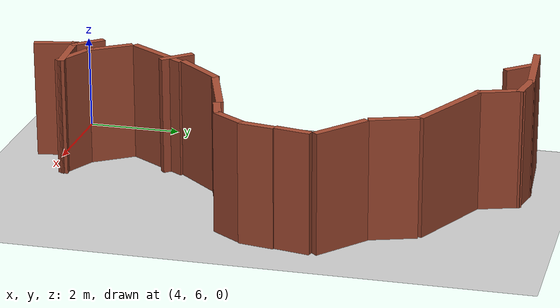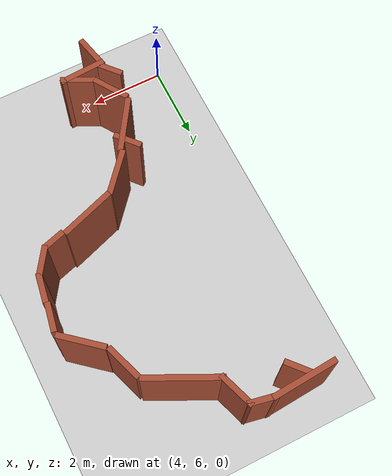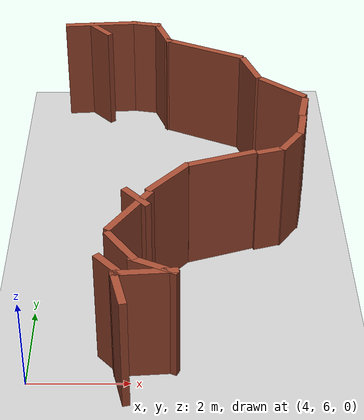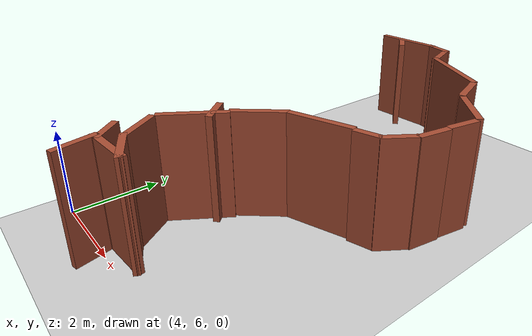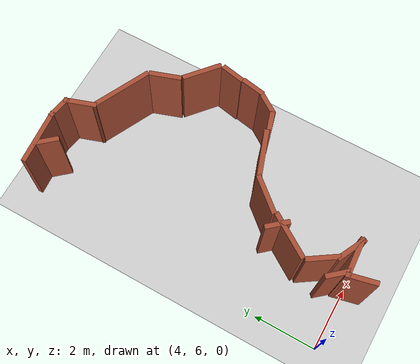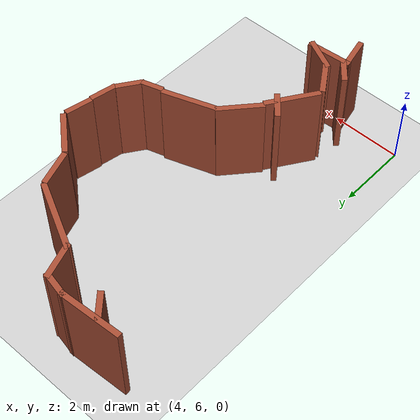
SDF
<sdf version="1.6">
 <world name="default">
  <model name="ground_plane">
   <static>1</static>
   <link name="link">
    <collision name="collision">
     <geometry><plane><normal>0 0 1</normal><size>100 100</size></plane></geometry>
     <surface><friction><ode><mu>100</mu><mu2>50</mu2></ode></friction></surface>
    </collision>
    <visual name="visual">
     <cast_shadows>0</cast_shadows>
     <geometry><plane><normal>0 0 1</normal><size>100 100</size></plane></geometry>
     <material>
      <script><uri>file://media/materials/scripts/gazebo.material</uri><name>Gazebo/Gray</name></script>
     </material>
    </visual>
   </link>
  </model>
  <model name="room5">
   <link name="Wall_0">
    <pose>-0.183506 -7.97438 0 0 0 -1.0472</pose>
    <visual name="Wall_0_Visual">
     <pose>0 0 1.25 0 -0 0</pose>
     <geometry><box><size>1 0.15 2.5</size></box></geometry>
     <material>
      <script><uri>file://media/materials/scripts/gazebo.material</uri><name>Gazebo/Bricks</name></script>
      <ambient>1 1 1 1</ambient>
      <shader type="pixel"/>
     </material>
     <meta><layer>0</layer></meta>
    </visual>
    <collision name="Wall_0_Collision">
     <pose>0 0 1.25 0 -0 0</pose>
     <geometry><box><size>1 0.15 2.5</size></box></geometry>
     <surface>
      <friction>
       <ode><mu>1</mu><mu2>1</mu2><fdir1>0 0 0</fdir1><slip1>0</slip1><slip2>0</slip2></ode>
       <torsional>
        <coefficient>1</coefficient>
        <patch_radius>0</patch_radius>
        <surface_radius>0</surface_radius>
        <use_patch_radius>1</use_patch_radius>
        <ode><slip>0</slip></ode>
       </torsional>
      </friction>
      <bounce><restitution_coefficient>0</restitution_coefficient><threshold>1e+06</threshold></bounce>
      <contact>
       <collide_without_contact>0</collide_without_contact>
       <collide_without_contact_bitmask>1</collide_without_contact_bitmask>
       <collide_bitmask>1</collide_bitmask>
       <ode>
        <soft_cfm>0</soft_cfm>
        <soft_erp>0.2</soft_erp>
        <kp>1e+13</kp>
        <kd>1</kd>
        <max_vel>0.01</max_vel>
        <min_depth>0</min_depth>
       </ode>
       <bullet>
        <split_impulse>1</split_impulse>
        <split_impulse_penetration_threshold>-0.01</split_impulse_penetration_threshold>
        <soft_cfm>0</soft_cfm>
        <soft_erp>0.2</soft_erp>
        <kp>1e+13</kp>
        <kd>1</kd>
       </bullet>
      </contact>
     </surface>
    </collision>
   </link>
   <link name="Wall_1">
    <pose>0.328993 -8.34245 0 0 -0 0</pose>
    <visual name="Wall_1_Visual">
     <pose>0 0 1.25 0 -0 0</pose>
     <geometry><box><size>0.75 0.15 2.5</size></box></geometry>
     <material>
      <script><uri>file://media/materials/scripts/gazebo.material</uri><name>Gazebo/Bricks</name></script>
      <ambient>1 1 1 1</ambient>
      <shader type="pixel"/>
     </material>
     <meta><layer>0</layer></meta>
    </visual>
    <collision name="Wall_1_Collision">
     <pose>0 0 1.25 0 -0 0</pose>
     <geometry><box><size>0.75 0.15 2.5</size></box></geometry>
     <surface>
      <friction>
       <ode><mu>1</mu><mu2>1</mu2><fdir1>0 0 0</fdir1><slip1>0</slip1><slip2>0</slip2></ode>
       <torsional>
        <coefficient>1</coefficient>
        <patch_radius>0</patch_radius>
        <surface_radius>0</surface_radius>
        <use_patch_radius>1</use_patch_radius>
        <ode><slip>0</slip></ode>
       </torsional>
      </friction>
      <bounce><restitution_coefficient>0</restitution_coefficient><threshold>1e+06</threshold></bounce>
      <contact>
       <collide_without_contact>0</collide_without_contact>
       <collide_without_contact_bitmask>1</collide_without_contact_bitmask>
       <collide_bitmask>1</collide_bitmask>
       <ode>
        <soft_cfm>0</soft_cfm>
        <soft_erp>0.2</soft_erp>
        <kp>1e+13</kp>
        <kd>1</kd>
        <max_vel>0.01</max_vel>
        <min_depth>0</min_depth>
       </ode>
       <bullet>
        <split_impulse>1</split_impulse>
        <split_impulse_penetration_threshold>-0.01</split_impulse_penetration_threshold>
        <soft_cfm>0</soft_cfm>
        <soft_erp>0.2</soft_erp>
        <kp>1e+13</kp>
        <kd>1</kd>
       </bullet>
      </contact>
     </surface>
    </collision>
   </link>
   <link name="Wall_11">
    <pose>-1.28949 -7.36692 0 0 -0 2.87979</pose>
    <visual name="Wall_11_Visual">
     <pose>0 0 1.25 0 -0 0</pose>
     <geometry><box><size>2 0.15 2.5</size></box></geometry>
     <material>
      <script><uri>file://media/materials/scripts/gazebo.material</uri><name>Gazebo/Bricks</name></script>
      <ambient>1 1 1 1</ambient>
      <shader type="pixel"/>
     </material>
     <meta><layer>0</layer></meta>
    </visual>
    <collision name="Wall_11_Collision">
     <pose>0 0 1.25 0 -0 0</pose>
     <geometry><box><size>2 0.15 2.5</size></box></geometry>
     <surface>
      <friction>
       <ode><mu>1</mu><mu2>1</mu2><fdir1>0 0 0</fdir1><slip1>0</slip1><slip2>0</slip2></ode>
       <torsional>
        <coefficient>1</coefficient>
        <patch_radius>0</patch_radius>
        <surface_radius>0</surface_radius>
        <use_patch_radius>1</use_patch_radius>
        <ode><slip>0</slip></ode>
       </torsional>
      </friction>
      <bounce><restitution_coefficient>0</restitution_coefficient><threshold>1e+06</threshold></bounce>
      <contact>
       <collide_without_contact>0</collide_without_contact>
       <collide_without_contact_bitmask>1</collide_without_contact_bitmask>
       <collide_bitmask>1</collide_bitmask>
       <ode>
        <soft_cfm>0</soft_cfm>
        <soft_erp>0.2</soft_erp>
        <kp>1e+13</kp>
        <kd>1</kd>
        <max_vel>0.01</max_vel>
        <min_depth>0</min_depth>
       </ode>
       <bullet>
        <split_impulse>1</split_impulse>
        <split_impulse_penetration_threshold>-0.01</split_impulse_penetration_threshold>
        <soft_cfm>0</soft_cfm>
        <soft_erp>0.2</soft_erp>
        <kp>1e+13</kp>
        <kd>1</kd>
       </bullet>
      </contact>
     </surface>
    </collision>
   </link>
   <link name="Wall_12">
    <pose>-2.44915 -2.83372 0 0 -0 0.523599</pose>
    <visual name="Wall_12_Visual">
     <pose>0 0 1.25 0 -0 0</pose>
     <geometry><box><size>1.5 0.15 2.5</size></box></geometry>
     <material>
      <script><uri>file://media/materials/scripts/gazebo.material</uri><name>Gazebo/Bricks</name></script>
      <ambient>1 1 1 1</ambient>
      <shader type="pixel"/>
     </material>
     <meta><layer>0</layer></meta>
    </visual>
    <collision name="Wall_12_Collision">
     <pose>0 0 1.25 0 -0 0</pose>
     <geometry><box><size>1.5 0.15 2.5</size></box></geometry>
     <surface>
      <friction>
       <ode><mu>1</mu><mu2>1</mu2><fdir1>0 0 0</fdir1><slip1>0</slip1><slip2>0</slip2></ode>
       <torsional>
        <coefficient>1</coefficient>
        <patch_radius>0</patch_radius>
        <surface_radius>0</surface_radius>
        <use_patch_radius>1</use_patch_radius>
        <ode><slip>0</slip></ode>
       </torsional>
      </friction>
      <bounce><restitution_coefficient>0</restitution_coefficient><threshold>1e+06</threshold></bounce>
      <contact>
       <collide_without_contact>0</collide_without_contact>
       <collide_without_contact_bitmask>1</collide_without_contact_bitmask>
       <collide_bitmask>1</collide_bitmask>
       <ode>
        <soft_cfm>0</soft_cfm>
        <soft_erp>0.2</soft_erp>
        <kp>1e+13</kp>
        <kd>1</kd>
        <max_vel>0.01</max_vel>
        <min_depth>0</min_depth>
       </ode>
       <bullet>
        <split_impulse>1</split_impulse>
        <split_impulse_penetration_threshold>-0.01</split_impulse_penetration_threshold>
        <soft_cfm>0</soft_cfm>
        <soft_erp>0.2</soft_erp>
        <kp>1e+13</kp>
        <kd>1</kd>
       </bullet>
      </contact>
     </surface>
    </collision>
   </link>
   <link name="Wall_13">
    <pose>-2.51054 -6.65573 0 0 -0 2.0944</pose>
    <visual name="Wall_13_Visual">
     <pose>0 0 1.25 0 -0 0</pose>
     <geometry><box><size>1 0.15 2.5</size></box></geometry>
     <material>
      <script><uri>file://media/materials/scripts/gazebo.material</uri><name>Gazebo/Bricks</name></script>
      <ambient>1 1 1 1</ambient>
      <shader type="pixel"/>
     </material>
     <meta><layer>0</layer></meta>
    </visual>
    <collision name="Wall_13_Collision">
     <pose>0 0 1.25 0 -0 0</pose>
     <geometry><box><size>1 0.15 2.5</size></box></geometry>
     <surface>
      <friction>
       <ode><mu>1</mu><mu2>1</mu2><fdir1>0 0 0</fdir1><slip1>0</slip1><slip2>0</slip2></ode>
       <torsional>
        <coefficient>1</coefficient>
        <patch_radius>0</patch_radius>
        <surface_radius>0</surface_radius>
        <use_patch_radius>1</use_patch_radius>
        <ode><slip>0</slip></ode>
       </torsional>
      </friction>
      <bounce><restitution_coefficient>0</restitution_coefficient><threshold>1e+06</threshold></bounce>
      <contact>
       <collide_without_contact>0</collide_without_contact>
       <collide_without_contact_bitmask>1</collide_without_contact_bitmask>
       <collide_bitmask>1</collide_bitmask>
       <ode>
        <soft_cfm>0</soft_cfm>
        <soft_erp>0.2</soft_erp>
        <kp>1e+13</kp>
        <kd>1</kd>
        <max_vel>0.01</max_vel>
        <min_depth>0</min_depth>
       </ode>
       <bullet>
        <split_impulse>1</split_impulse>
        <split_impulse_penetration_threshold>-0.01</split_impulse_penetration_threshold>
        <soft_cfm>0</soft_cfm>
        <soft_erp>0.2</soft_erp>
        <kp>1e+13</kp>
        <kd>1</kd>
       </bullet>
      </contact>
     </surface>
    </collision>
   </link>
   <link name="Wall_16">
    <pose>-3.8903 -5.15429 0 0 -0 1.5708</pose>
    <visual name="Wall_16_Visual">
     <pose>0 0 1.25 0 -0 0</pose>
     <geometry><box><size>0.75 0.15 2.5</size></box></geometry>
     <material>
      <script><uri>file://media/materials/scripts/gazebo.material</uri><name>Gazebo/Bricks</name></script>
      <ambient>1 1 1 1</ambient>
      <shader type="pixel"/>
     </material>
     <meta><layer>0</layer></meta>
    </visual>
    <collision name="Wall_16_Collision">
     <pose>0 0 1.25 0 -0 0</pose>
     <geometry><box><size>0.75 0.15 2.5</size></box></geometry>
     <surface>
      <friction>
       <ode><mu>1</mu><mu2>1</mu2><fdir1>0 0 0</fdir1><slip1>0</slip1><slip2>0</slip2></ode>
       <torsional>
        <coefficient>1</coefficient>
        <patch_radius>0</patch_radius>
        <surface_radius>0</surface_radius>
        <use_patch_radius>1</use_patch_radius>
        <ode><slip>0</slip></ode>
       </torsional>
      </friction>
      <bounce><restitution_coefficient>0</restitution_coefficient><threshold>1e+06</threshold></bounce>
      <contact>
       <collide_without_contact>0</collide_without_contact>
       <collide_without_contact_bitmask>1</collide_without_contact_bitmask>
       <collide_bitmask>1</collide_bitmask>
       <ode>
        <soft_cfm>0</soft_cfm>
        <soft_erp>0.2</soft_erp>
        <kp>1e+13</kp>
        <kd>1</kd>
        <max_vel>0.01</max_vel>
        <min_depth>0</min_depth>
       </ode>
       <bullet>
        <split_impulse>1</split_impulse>
        <split_impulse_penetration_threshold>-0.01</split_impulse_penetration_threshold>
        <soft_cfm>0</soft_cfm>
        <soft_erp>0.2</soft_erp>
        <kp>1e+13</kp>
        <kd>1</kd>
       </bullet>
      </contact>
     </surface>
    </collision>
   </link>
   <link name="Wall_17">
    <pose>-3.33996 -5.9042 0 0 -0 2.63004</pose>
    <visual name="Wall_17_Visual">
     <pose>0 0 1.25 0 -0 0</pose>
     <geometry><box><size>1.25 0.15 2.5</size></box></geometry>
     <material>
      <script><uri>file://media/materials/scripts/gazebo.material</uri><name>Gazebo/Bricks</name></script>
      <ambient>1 1 1 1</ambient>
      <shader type="pixel"/>
     </material>
     <meta><layer>0</layer></meta>
    </visual>
    <collision name="Wall_17_Collision">
     <pose>0 0 1.25 0 -0 0</pose>
     <geometry><box><size>1.25 0.15 2.5</size></box></geometry>
     <surface>
      <friction>
       <ode><mu>1</mu><mu2>1</mu2><fdir1>0 0 0</fdir1><slip1>0</slip1><slip2>0</slip2></ode>
       <torsional>
        <coefficient>1</coefficient>
        <patch_radius>0</patch_radius>
        <surface_radius>0</surface_radius>
        <use_patch_radius>1</use_patch_radius>
        <ode><slip>0</slip></ode>
       </torsional>
      </friction>
      <bounce><restitution_coefficient>0</restitution_coefficient><threshold>1e+06</threshold></bounce>
      <contact>
       <collide_without_contact>0</collide_without_contact>
       <collide_without_contact_bitmask>1</collide_without_contact_bitmask>
       <collide_bitmask>1</collide_bitmask>
       <ode>
        <soft_cfm>0</soft_cfm>
        <soft_erp>0.2</soft_erp>
        <kp>1e+13</kp>
        <kd>1</kd>
        <max_vel>0.01</max_vel>
        <min_depth>0</min_depth>
       </ode>
       <bullet>
        <split_impulse>1</split_impulse>
        <split_impulse_penetration_threshold>-0.01</split_impulse_penetration_threshold>
        <soft_cfm>0</soft_cfm>
        <soft_erp>0.2</soft_erp>
        <kp>1e+13</kp>
        <kd>1</kd>
       </bullet>
      </contact>
     </surface>
    </collision>
   </link>
   <link name="Wall_18">
    <pose>-3.92963 -4.40416 0 0 -0 1.58659</pose>
    <visual name="Wall_18_Visual">
     <pose>0 0 1.25 0 -0 0</pose>
     <geometry><box><size>0.75 0.15 2.5</size></box></geometry>
     <material>
      <script><uri>file://media/materials/scripts/gazebo.material</uri><name>Gazebo/Bricks</name></script>
      <ambient>1 1 1 1</ambient>
      <shader type="pixel"/>
     </material>
     <meta><layer>0</layer></meta>
    </visual>
    <collision name="Wall_18_Collision">
     <pose>0 0 1.25 0 -0 0</pose>
     <geometry><box><size>0.75 0.15 2.5</size></box></geometry>
     <surface>
      <friction>
       <ode><mu>1</mu><mu2>1</mu2><fdir1>0 0 0</fdir1><slip1>0</slip1><slip2>0</slip2></ode>
       <torsional>
        <coefficient>1</coefficient>
        <patch_radius>0</patch_radius>
        <surface_radius>0</surface_radius>
        <use_patch_radius>1</use_patch_radius>
        <ode><slip>0</slip></ode>
       </torsional>
      </friction>
      <bounce><restitution_coefficient>0</restitution_coefficient><threshold>1e+06</threshold></bounce>
      <contact>
       <collide_without_contact>0</collide_without_contact>
       <collide_without_contact_bitmask>1</collide_without_contact_bitmask>
       <collide_bitmask>1</collide_bitmask>
       <ode>
        <soft_cfm>0</soft_cfm>
        <soft_erp>0.2</soft_erp>
        <kp>1e+13</kp>
        <kd>1</kd>
        <max_vel>0.01</max_vel>
        <min_depth>0</min_depth>
       </ode>
       <bullet>
        <split_impulse>1</split_impulse>
        <split_impulse_penetration_threshold>-0.01</split_impulse_penetration_threshold>
        <soft_cfm>0</soft_cfm>
        <soft_erp>0.2</soft_erp>
        <kp>1e+13</kp>
        <kd>1</kd>
       </bullet>
      </contact>
     </surface>
    </collision>
   </link>
   <link name="Wall_2">
    <pose>1.40173 -8.13539 0 0 -0 0.261799</pose>
    <visual name="Wall_2_Visual">
     <pose>0 0 1.25 0 -0 0</pose>
     <geometry><box><size>1.75 0.15 2.5</size></box></geometry>
     <material>
      <script><uri>file://media/materials/scripts/gazebo.material</uri><name>Gazebo/Bricks</name></script>
      <ambient>1 1 1 1</ambient>
      <shader type="pixel"/>
     </material>
     <meta><layer>0</layer></meta>
    </visual>
    <collision name="Wall_2_Collision">
     <pose>0 0 1.25 0 -0 0</pose>
     <geometry><box><size>1.75 0.15 2.5</size></box></geometry>
     <surface>
      <friction>
       <ode><mu>1</mu><mu2>1</mu2><fdir1>0 0 0</fdir1><slip1>0</slip1><slip2>0</slip2></ode>
       <torsional>
        <coefficient>1</coefficient>
        <patch_radius>0</patch_radius>
        <surface_radius>0</surface_radius>
        <use_patch_radius>1</use_patch_radius>
        <ode><slip>0</slip></ode>
       </torsional>
      </friction>
      <bounce><restitution_coefficient>0</restitution_coefficient><threshold>1e+06</threshold></bounce>
      <contact>
       <collide_without_contact>0</collide_without_contact>
       <collide_without_contact_bitmask>1</collide_without_contact_bitmask>
       <collide_bitmask>1</collide_bitmask>
       <ode>
        <soft_cfm>0</soft_cfm>
        <soft_erp>0.2</soft_erp>
        <kp>1e+13</kp>
        <kd>1</kd>
        <max_vel>0.01</max_vel>
        <min_depth>0</min_depth>
       </ode>
       <bullet>
        <split_impulse>1</split_impulse>
        <split_impulse_penetration_threshold>-0.01</split_impulse_penetration_threshold>
        <soft_cfm>0</soft_cfm>
        <soft_erp>0.2</soft_erp>
        <kp>1e+13</kp>
        <kd>1</kd>
       </bullet>
      </contact>
     </surface>
    </collision>
   </link>
   <link name="Wall_20">
    <pose>-1.49461 -1.95686 0 0 -0 1.0472</pose>
    <visual name="Wall_20_Visual">
     <pose>0 0 1.25 0 -0 0</pose>
     <geometry><box><size>1.25 0.15 2.5</size></box></geometry>
     <material>
      <script><uri>file://media/materials/scripts/gazebo.material</uri><name>Gazebo/Bricks</name></script>
      <ambient>1 1 1 1</ambient>
      <shader type="pixel"/>
     </material>
     <meta><layer>0</layer></meta>
    </visual>
    <collision name="Wall_20_Collision">
     <pose>0 0 1.25 0 -0 0</pose>
     <geometry><box><size>1.25 0.15 2.5</size></box></geometry>
     <surface>
      <friction>
       <ode><mu>1</mu><mu2>1</mu2><fdir1>0 0 0</fdir1><slip1>0</slip1><slip2>0</slip2></ode>
       <torsional>
        <coefficient>1</coefficient>
        <patch_radius>0</patch_radius>
        <surface_radius>0</surface_radius>
        <use_patch_radius>1</use_patch_radius>
        <ode><slip>0</slip></ode>
       </torsional>
      </friction>
      <bounce><restitution_coefficient>0</restitution_coefficient><threshold>1e+06</threshold></bounce>
      <contact>
       <collide_without_contact>0</collide_without_contact>
       <collide_without_contact_bitmask>1</collide_without_contact_bitmask>
       <collide_bitmask>1</collide_bitmask>
       <ode>
        <soft_cfm>0</soft_cfm>
        <soft_erp>0.2</soft_erp>
        <kp>1e+13</kp>
        <kd>1</kd>
        <max_vel>0.01</max_vel>
        <min_depth>0</min_depth>
       </ode>
       <bullet>
        <split_impulse>1</split_impulse>
        <split_impulse_penetration_threshold>-0.01</split_impulse_penetration_threshold>
        <soft_cfm>0</soft_cfm>
        <soft_erp>0.2</soft_erp>
        <kp>1e+13</kp>
        <kd>1</kd>
       </bullet>
      </contact>
     </surface>
    </collision>
   </link>
   <link name="Wall_21">
    <pose>-3.77154 -3.72157 0 0 -0 1.16555</pose>
    <visual name="Wall_21_Visual">
     <pose>0 0 1.25 0 -0 0</pose>
     <geometry><box><size>0.75 0.15 2.5</size></box></geometry>
     <material>
      <script><uri>file://media/materials/scripts/gazebo.material</uri><name>Gazebo/Bricks</name></script>
      <ambient>1 1 1 1</ambient>
      <shader type="pixel"/>
     </material>
     <meta><layer>0</layer></meta>
    </visual>
    <collision name="Wall_21_Collision">
     <pose>0 0 1.25 0 -0 0</pose>
     <geometry><box><size>0.75 0.15 2.5</size></box></geometry>
     <surface>
      <friction>
       <ode><mu>1</mu><mu2>1</mu2><fdir1>0 0 0</fdir1><slip1>0</slip1><slip2>0</slip2></ode>
       <torsional>
        <coefficient>1</coefficient>
        <patch_radius>0</patch_radius>
        <surface_radius>0</surface_radius>
        <use_patch_radius>1</use_patch_radius>
        <ode><slip>0</slip></ode>
       </torsional>
      </friction>
      <bounce><restitution_coefficient>0</restitution_coefficient><threshold>1e+06</threshold></bounce>
      <contact>
       <collide_without_contact>0</collide_without_contact>
       <collide_without_contact_bitmask>1</collide_without_contact_bitmask>
       <collide_bitmask>1</collide_bitmask>
       <ode>
        <soft_cfm>0</soft_cfm>
        <soft_erp>0.2</soft_erp>
        <kp>1e+13</kp>
        <kd>1</kd>
        <max_vel>0.01</max_vel>
        <min_depth>0</min_depth>
       </ode>
       <bullet>
        <split_impulse>1</split_impulse>
        <split_impulse_penetration_threshold>-0.01</split_impulse_penetration_threshold>
        <soft_cfm>0</soft_cfm>
        <soft_erp>0.2</soft_erp>
        <kp>1e+13</kp>
        <kd>1</kd>
       </bullet>
      </contact>
     </surface>
    </collision>
   </link>
   <link name="Wall_23">
    <pose>-0.971243 -0.724123 0 0 -0 1.18423</pose>
    <visual name="Wall_23_Visual">
     <pose>0 0 1.25 0 -0 0</pose>
     <geometry><box><size>1.5 0.15 2.5</size></box></geometry>
     <material>
      <script><uri>file://media/materials/scripts/gazebo.material</uri><name>Gazebo/Bricks</name></script>
      <ambient>1 1 1 1</ambient>
      <shader type="pixel"/>
     </material>
     <meta><layer>0</layer></meta>
    </visual>
    <collision name="Wall_23_Collision">
     <pose>0 0 1.25 0 -0 0</pose>
     <geometry><box><size>1.5 0.15 2.5</size></box></geometry>
     <surface>
      <friction>
       <ode><mu>1</mu><mu2>1</mu2><fdir1>0 0 0</fdir1><slip1>0</slip1><slip2>0</slip2></ode>
       <torsional>
        <coefficient>1</coefficient>
        <patch_radius>0</patch_radius>
        <surface_radius>0</surface_radius>
        <use_patch_radius>1</use_patch_radius>
        <ode><slip>0</slip></ode>
       </torsional>
      </friction>
      <bounce><restitution_coefficient>0</restitution_coefficient><threshold>1e+06</threshold></bounce>
      <contact>
       <collide_without_contact>0</collide_without_contact>
       <collide_without_contact_bitmask>1</collide_without_contact_bitmask>
       <collide_bitmask>1</collide_bitmask>
       <ode>
        <soft_cfm>0</soft_cfm>
        <soft_erp>0.2</soft_erp>
        <kp>1e+13</kp>
        <kd>1</kd>
        <max_vel>0.01</max_vel>
        <min_depth>0</min_depth>
       </ode>
       <bullet>
        <split_impulse>1</split_impulse>
        <split_impulse_penetration_threshold>-0.01</split_impulse_penetration_threshold>
        <soft_cfm>0</soft_cfm>
        <soft_erp>0.2</soft_erp>
        <kp>1e+13</kp>
        <kd>1</kd>
       </bullet>
      </contact>
     </surface>
    </collision>
   </link>
   <link name="Wall_24">
    <pose>-1.05323 0.370394 0 0 -0 2.35619</pose>
    <visual name="Wall_24_Visual">
     <pose>0 0 1.25 0 -0 0</pose>
     <geometry><box><size>1 0.15 2.5</size></box></geometry>
     <material>
      <script><uri>file://media/materials/scripts/gazebo.material</uri><name>Gazebo/Bricks</name></script>
      <ambient>1 1 1 1</ambient>
      <shader type="pixel"/>
     </material>
     <meta><layer>0</layer></meta>
    </visual>
    <collision name="Wall_24_Collision">
     <pose>0 0 1.25 0 -0 0</pose>
     <geometry><box><size>1 0.15 2.5</size></box></geometry>
     <surface>
      <friction>
       <ode><mu>1</mu><mu2>1</mu2><fdir1>0 0 0</fdir1><slip1>0</slip1><slip2>0</slip2></ode>
       <torsional>
        <coefficient>1</coefficient>
        <patch_radius>0</patch_radius>
        <surface_radius>0</surface_radius>
        <use_patch_radius>1</use_patch_radius>
        <ode><slip>0</slip></ode>
       </torsional>
      </friction>
      <bounce><restitution_coefficient>0</restitution_coefficient><threshold>1e+06</threshold></bounce>
      <contact>
       <collide_without_contact>0</collide_without_contact>
       <collide_without_contact_bitmask>1</collide_without_contact_bitmask>
       <collide_bitmask>1</collide_bitmask>
       <ode>
        <soft_cfm>0</soft_cfm>
        <soft_erp>0.2</soft_erp>
        <kp>1e+13</kp>
        <kd>1</kd>
        <max_vel>0.01</max_vel>
        <min_depth>0</min_depth>
       </ode>
       <bullet>
        <split_impulse>1</split_impulse>
        <split_impulse_penetration_threshold>-0.01</split_impulse_penetration_threshold>
        <soft_cfm>0</soft_cfm>
        <soft_erp>0.2</soft_erp>
        <kp>1e+13</kp>
        <kd>1</kd>
       </bullet>
      </contact>
     </surface>
    </collision>
   </link>
   <link name="Wall_25">
    <pose>-1.76805 0.819479 0 0 -0 2.87979</pose>
    <visual name="Wall_25_Visual">
     <pose>0 0 1.25 0 -0 0</pose>
     <geometry><box><size>1 0.15 2.5</size></box></geometry>
     <material>
      <script><uri>file://media/materials/scripts/gazebo.material</uri><name>Gazebo/Bricks</name></script>
      <ambient>1 1 1 1</ambient>
      <shader type="pixel"/>
     </material>
     <meta><layer>0</layer></meta>
    </visual>
    <collision name="Wall_25_Collision">
     <pose>0 0 1.25 0 -0 0</pose>
     <geometry><box><size>1 0.15 2.5</size></box></geometry>
     <surface>
      <friction>
       <ode><mu>1</mu><mu2>1</mu2><fdir1>0 0 0</fdir1><slip1>0</slip1><slip2>0</slip2></ode>
       <torsional>
        <coefficient>1</coefficient>
        <patch_radius>0</patch_radius>
        <surface_radius>0</surface_radius>
        <use_patch_radius>1</use_patch_radius>
        <ode><slip>0</slip></ode>
       </torsional>
      </friction>
      <bounce><restitution_coefficient>0</restitution_coefficient><threshold>1e+06</threshold></bounce>
      <contact>
       <collide_without_contact>0</collide_without_contact>
       <collide_without_contact_bitmask>1</collide_without_contact_bitmask>
       <collide_bitmask>1</collide_bitmask>
       <ode>
        <soft_cfm>0</soft_cfm>
        <soft_erp>0.2</soft_erp>
        <kp>1e+13</kp>
        <kd>1</kd>
        <max_vel>0.01</max_vel>
        <min_depth>0</min_depth>
       </ode>
       <bullet>
        <split_impulse>1</split_impulse>
        <split_impulse_penetration_threshold>-0.01</split_impulse_penetration_threshold>
        <soft_cfm>0</soft_cfm>
        <soft_erp>0.2</soft_erp>
        <kp>1e+13</kp>
        <kd>1</kd>
       </bullet>
      </contact>
     </surface>
    </collision>
   </link>
   <link name="Wall_26">
    <pose>-1.64353 1.03326 0 0 -0 0.261799</pose>
    <visual name="Wall_26_Visual">
     <pose>0 0 1.25 0 -0 0</pose>
     <geometry><box><size>1.25 0.15 2.5</size></box></geometry>
     <material>
      <script><uri>file://media/materials/scripts/gazebo.material</uri><name>Gazebo/Bricks</name></script>
      <ambient>1 1 1 1</ambient>
      <shader type="pixel"/>
     </material>
     <meta><layer>0</layer></meta>
    </visual>
    <collision name="Wall_26_Collision">
     <pose>0 0 1.25 0 -0 0</pose>
     <geometry><box><size>1.25 0.15 2.5</size></box></geometry>
     <surface>
      <friction>
       <ode><mu>1</mu><mu2>1</mu2><fdir1>0 0 0</fdir1><slip1>0</slip1><slip2>0</slip2></ode>
       <torsional>
        <coefficient>1</coefficient>
        <patch_radius>0</patch_radius>
        <surface_radius>0</surface_radius>
        <use_patch_radius>1</use_patch_radius>
        <ode><slip>0</slip></ode>
       </torsional>
      </friction>
      <bounce><restitution_coefficient>0</restitution_coefficient><threshold>1e+06</threshold></bounce>
      <contact>
       <collide_without_contact>0</collide_without_contact>
       <collide_without_contact_bitmask>1</collide_without_contact_bitmask>
       <collide_bitmask>1</collide_bitmask>
       <ode>
        <soft_cfm>0</soft_cfm>
        <soft_erp>0.2</soft_erp>
        <kp>1e+13</kp>
        <kd>1</kd>
        <max_vel>0.01</max_vel>
        <min_depth>0</min_depth>
       </ode>
       <bullet>
        <split_impulse>1</split_impulse>
        <split_impulse_penetration_threshold>-0.01</split_impulse_penetration_threshold>
        <soft_cfm>0</soft_cfm>
        <soft_erp>0.2</soft_erp>
        <kp>1e+13</kp>
        <kd>1</kd>
       </bullet>
      </contact>
     </surface>
    </collision>
   </link>
   <link name="Wall_37_clone_clone">
    <pose>-1.0031 -1.17645 0 0 -0 2.48357</pose>
    <visual name="Wall_37_Visual">
     <pose>0 0 1.25 0 -0 0</pose>
     <geometry><box><size>0.75 0.15 2.5</size></box></geometry>
     <material>
      <script><uri>file://media/materials/scripts/gazebo.material</uri><name>Gazebo/Bricks</name></script>
      <ambient>1 1 1 1</ambient>
      <shader type="pixel"/>
     </material>
     <meta><layer>0</layer></meta>
    </visual>
    <collision name="Wall_37_Collision">
     <pose>0 0 1.25 0 -0 0</pose>
     <geometry><box><size>0.75 0.15 2.5</size></box></geometry>
     <surface>
      <friction>
       <ode><mu>1</mu><mu2>1</mu2><fdir1>0 0 0</fdir1><slip1>0</slip1><slip2>0</slip2></ode>
       <torsional>
        <coefficient>1</coefficient>
        <patch_radius>0</patch_radius>
        <surface_radius>0</surface_radius>
        <use_patch_radius>1</use_patch_radius>
        <ode><slip>0</slip></ode>
       </torsional>
      </friction>
      <bounce><restitution_coefficient>0</restitution_coefficient><threshold>1e+06</threshold></bounce>
      <contact>
       <collide_without_contact>0</collide_without_contact>
       <collide_without_contact_bitmask>1</collide_without_contact_bitmask>
       <collide_bitmask>1</collide_bitmask>
       <ode>
        <soft_cfm>0</soft_cfm>
        <soft_erp>0.2</soft_erp>
        <kp>1e+13</kp>
        <kd>1</kd>
        <max_vel>0.01</max_vel>
        <min_depth>0</min_depth>
       </ode>
       <bullet>
        <split_impulse>1</split_impulse>
        <split_impulse_penetration_threshold>-0.01</split_impulse_penetration_threshold>
        <soft_cfm>0</soft_cfm>
        <soft_erp>0.2</soft_erp>
        <kp>1e+13</kp>
        <kd>1</kd>
       </bullet>
      </contact>
     </surface>
    </collision>
   </link>
   <link name="Wall_37_clone_clone_5">
    <pose>1.35514 -7.85963 0 0 -0 2.48357</pose>
    <visual name="Wall_37_Visual">
     <pose>0 0 1.25 0 -0 0</pose>
     <geometry><box><size>0.75 0.15 2.5</size></box></geometry>
     <material>
      <script><uri>file://media/materials/scripts/gazebo.material</uri><name>Gazebo/Bricks</name></script>
      <ambient>1 1 1 1</ambient>
      <shader type="pixel"/>
     </material>
     <meta><layer>0</layer></meta>
    </visual>
    <collision name="Wall_37_Collision">
     <pose>0 0 1.25 0 -0 0</pose>
     <geometry><box><size>0.75 0.15 2.5</size></box></geometry>
     <surface>
      <friction>
       <ode><mu>1</mu><mu2>1</mu2><fdir1>0 0 0</fdir1><slip1>0</slip1><slip2>0</slip2></ode>
       <torsional>
        <coefficient>1</coefficient>
        <patch_radius>0</patch_radius>
        <surface_radius>0</surface_radius>
        <use_patch_radius>1</use_patch_radius>
        <ode><slip>0</slip></ode>
       </torsional>
      </friction>
      <bounce><restitution_coefficient>0</restitution_coefficient><threshold>1e+06</threshold></bounce>
      <contact>
       <collide_without_contact>0</collide_without_contact>
       <collide_without_contact_bitmask>1</collide_without_contact_bitmask>
       <collide_bitmask>1</collide_bitmask>
       <ode>
        <soft_cfm>0</soft_cfm>
        <soft_erp>0.2</soft_erp>
        <kp>1e+13</kp>
        <kd>1</kd>
        <max_vel>0.01</max_vel>
        <min_depth>0</min_depth>
       </ode>
       <bullet>
        <split_impulse>1</split_impulse>
        <split_impulse_penetration_threshold>-0.01</split_impulse_penetration_threshold>
        <soft_cfm>0</soft_cfm>
        <soft_erp>0.2</soft_erp>
        <kp>1e+13</kp>
        <kd>1</kd>
       </bullet>
      </contact>
     </surface>
    </collision>
   </link>
   <link name="Wall_37_clone_clone_6">
    <pose>-0.965722 0.949725 0 0 -0 2.48357</pose>
    <visual name="Wall_37_Visual">
     <pose>0 0 1.25 0 -0 0</pose>
     <geometry><box><size>0.75 0.15 2.5</size></box></geometry>
     <material>
      <script><uri>file://media/materials/scripts/gazebo.material</uri><name>Gazebo/Bricks</name></script>
      <ambient>1 1 1 1</ambient>
      <shader type="pixel"/>
     </material>
     <meta><layer>0</layer></meta>
    </visual>
    <collision name="Wall_37_Collision">
     <pose>0 0 1.25 0 -0 0</pose>
     <geometry><box><size>0.75 0.15 2.5</size></box></geometry>
     <surface>
      <friction>
       <ode><mu>1</mu><mu2>1</mu2><fdir1>0 0 0</fdir1><slip1>0</slip1><slip2>0</slip2></ode>
       <torsional>
        <coefficient>1</coefficient>
        <patch_radius>0</patch_radius>
        <surface_radius>0</surface_radius>
        <use_patch_radius>1</use_patch_radius>
        <ode><slip>0</slip></ode>
       </torsional>
      </friction>
      <bounce><restitution_coefficient>0</restitution_coefficient><threshold>1e+06</threshold></bounce>
      <contact>
       <collide_without_contact>0</collide_without_contact>
       <collide_without_contact_bitmask>1</collide_without_contact_bitmask>
       <collide_bitmask>1</collide_bitmask>
       <ode>
        <soft_cfm>0</soft_cfm>
        <soft_erp>0.2</soft_erp>
        <kp>1e+13</kp>
        <kd>1</kd>
        <max_vel>0.01</max_vel>
        <min_depth>0</min_depth>
       </ode>
       <bullet>
        <split_impulse>1</split_impulse>
        <split_impulse_penetration_threshold>-0.01</split_impulse_penetration_threshold>
        <soft_cfm>0</soft_cfm>
        <soft_erp>0.2</soft_erp>
        <kp>1e+13</kp>
        <kd>1</kd>
       </bullet>
      </contact>
     </surface>
    </collision>
   </link>
   <link name="Wall_54">
    <pose>-1.27332 1.53611 0 0 0 -1.15067</pose>
    <visual name="Wall_54_Visual">
     <pose>0 0 1.25 0 -0 0</pose>
     <geometry><box><size>0.939679 0.15 2.5</size></box></geometry>
     <material>
      <script><uri>file://media/materials/scripts/gazebo.material</uri><name>Gazebo/Bricks</name></script>
      <ambient>1 1 1 1</ambient>
      <shader type="pixel"/>
     </material>
     <meta><layer>0</layer></meta>
    </visual>
    <collision name="Wall_54_Collision">
     <pose>0 0 1.25 0 -0 0</pose>
     <geometry><box><size>0.939679 0.15 2.5</size></box></geometry>
     <surface>
      <friction>
       <ode><mu>1</mu><mu2>1</mu2><fdir1>0 0 0</fdir1><slip1>0</slip1><slip2>0</slip2></ode>
       <torsional>
        <coefficient>1</coefficient>
        <patch_radius>0</patch_radius>
        <surface_radius>0</surface_radius>
        <use_patch_radius>1</use_patch_radius>
        <ode><slip>0</slip></ode>
       </torsional>
      </friction>
      <bounce><restitution_coefficient>0</restitution_coefficient><threshold>1e+06</threshold></bounce>
      <contact>
       <collide_without_contact>0</collide_without_contact>
       <collide_without_contact_bitmask>1</collide_without_contact_bitmask>
       <collide_bitmask>1</collide_bitmask>
       <ode>
        <soft_cfm>0</soft_cfm>
        <soft_erp>0.2</soft_erp>
        <kp>1e+13</kp>
        <kd>1</kd>
        <max_vel>0.01</max_vel>
        <min_depth>0</min_depth>
       </ode>
       <bullet>
        <split_impulse>1</split_impulse>
        <split_impulse_penetration_threshold>-0.01</split_impulse_penetration_threshold>
        <soft_cfm>0</soft_cfm>
        <soft_erp>0.2</soft_erp>
        <kp>1e+13</kp>
        <kd>1</kd>
       </bullet>
      </contact>
     </surface>
    </collision>
   </link>
   <link name="Wall_65">
    <pose>-3.38946 -3.2943 0 0 0 -2.65564</pose>
    <visual name="Wall_65_Visual">
     <pose>0 0 1.25 0 -0 0</pose>
     <geometry><box><size>0.603708 0.15 2.5</size></box></geometry>
     <material>
      <script><uri>file://media/materials/scripts/gazebo.material</uri><name>Gazebo/Bricks</name></script>
      <ambient>1 1 1 1</ambient>
      <shader type="pixel"/>
     </material>
     <meta><layer>0</layer></meta>
    </visual>
    <collision name="Wall_65_Collision">
     <pose>0 0 1.25 0 -0 0</pose>
     <geometry><box><size>0.603708 0.15 2.5</size></box></geometry>
     <surface>
      <friction>
       <ode><mu>1</mu><mu2>1</mu2><fdir1>0 0 0</fdir1><slip1>0</slip1><slip2>0</slip2></ode>
       <torsional>
        <coefficient>1</coefficient>
        <patch_radius>0</patch_radius>
        <surface_radius>0</surface_radius>
        <use_patch_radius>1</use_patch_radius>
        <ode><slip>0</slip></ode>
       </torsional>
      </friction>
      <bounce><restitution_coefficient>0</restitution_coefficient><threshold>1e+06</threshold></bounce>
      <contact>
       <collide_without_contact>0</collide_without_contact>
       <collide_without_contact_bitmask>1</collide_without_contact_bitmask>
       <collide_bitmask>1</collide_bitmask>
       <ode>
        <soft_cfm>0</soft_cfm>
        <soft_erp>0.2</soft_erp>
        <kp>1e+13</kp>
        <kd>1</kd>
        <max_vel>0.01</max_vel>
        <min_depth>0</min_depth>
       </ode>
       <bullet>
        <split_impulse>1</split_impulse>
        <split_impulse_penetration_threshold>-0.01</split_impulse_penetration_threshold>
        <soft_cfm>0</soft_cfm>
        <soft_erp>0.2</soft_erp>
        <kp>1e+13</kp>
        <kd>1</kd>
       </bullet>
      </contact>
     </surface>
    </collision>
   </link>
   <static>1</static>
   <pose>4.86537 7.64263 0 0 -0 2.94701</pose>
  </model>
 </world>
</sdf>
